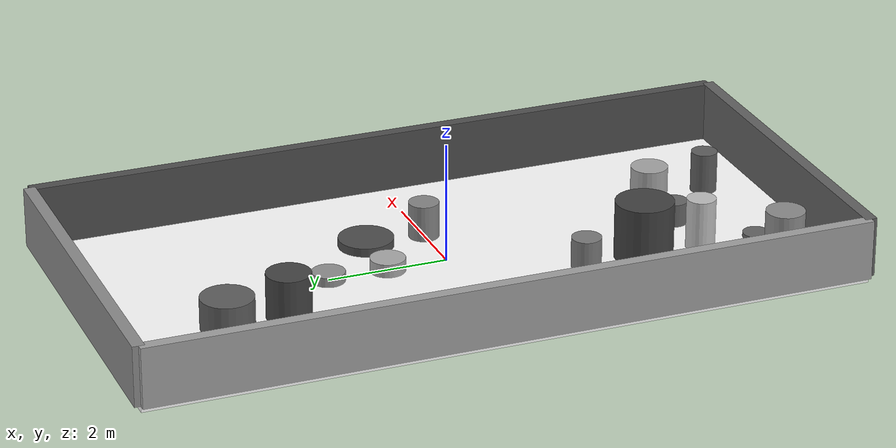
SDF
<sdf version="1.7">
  <world name="default">
    <plugin filename="gz-sim-physics-system" name="gz::sim::systems::Physics" />
    <plugin filename="gz-sim-user-commands-system" name="gz::sim::systems::UserCommands" />
    <plugin filename="gz-sim-scene-broadcaster-system" name="gz::sim::systems::SceneBroadcaster" />
    <plugin filename="gz-sim-sensors-system" name="gz::sim::systems::Sensors">
      <render_engine>ogre2</render_engine>
    </plugin>
    <plugin filename="gz-sim-imu-system" name="gz::sim::systems::Imu" />
    <plugin filename="gz-sim-contact-system" name="gz::sim::systems::Contact" />
    <light name="sun" type="directional">
      <cast_shadows>true</cast_shadows>
      <direction>-0.5 -0.5 -1</direction>
      <diffuse>1 1 1 1</diffuse>
      <specular>0.1 0.1 0.1 1</specular>
      <intensity>1.0</intensity>
    </light>
    <physics type="ode">
      <max_step_size>0.001</max_step_size>
      <real_time_factor>1.0</real_time_factor>
      <ode>
        <solver>
          <type>quick</type>
          <iters>150</iters>
          <precon_iters>0</precon_iters>
          <sor>1.4</sor>
          <use_dynamic_moi_rescaling>1</use_dynamic_moi_rescaling>
        </solver>
        <constraints>
          <cfm>0.00001</cfm>
          <erp>0.2</erp>
          <contact_max_correcting_vel>2000.0</contact_max_correcting_vel>
          <contact_surface_layer>0.01</contact_surface_layer>
        </constraints>
      </ode>
    </physics>
    <model name="ground_plane">
      <static>true</static>
      <link name="link">
        <pose>0.0 0.0 -0.05 0.0 0.0 0.0</pose>
        <visual name="visual">
          <material>
            <pbr>
              <metal>
                <albedo_map>file:///home/sjohnson/WorldGeneration/floor_texture.png</albedo_map>
                <metalness>0.0</metalness>
                <roughness>1.0</roughness>
              </metal>
            </pbr>
            <ambient>1 1 1 1</ambient>
            <diffuse>1 1 1 1</diffuse>
          </material>
          <geometry>
            <box>
              <size>6.0 12.0 0.1</size>
            </box>
          </geometry>
        </visual>
        <collision name="collision">
          <geometry>
            <box>
              <size>6.0 12.0 0.1</size>
            </box>
          </geometry>
          <surface>
            <friction>
              <ode>
                <mu>100</mu>
                <mu2>50.0</mu2>
                <slip1>0.0</slip1>
                <slip2>0.0</slip2>
              </ode>
            </friction>
            <bounce />
            <contact>
              <ode>
                <kp>10000.0</kp>
                <kd>100.0</kd>
              </ode>
            </contact>
          </surface>
        </collision>
      </link>
    </model>
    <model name="pn_pillar_0">
      <static>true</static>
      <link name="link">
        <pose>-2.0 -5.0 0.4469273363149318 0.0 0.0 0.0</pose>
        <visual name="visual">
          <material>
            <ambient>0.5531721096645393 0.5531721096645393 0.5531721096645393 1</ambient>
            <diffuse>0.5531721096645393 0.5531721096645393 0.5531721096645393 1</diffuse>
          </material>
          <geometry>
            <cylinder>
              <radius>0.3199983187913039</radius>
              <length>0.8938546726298636</length>
            </cylinder>
          </geometry>
        </visual>
        <collision name="collision">
          <geometry>
            <cylinder>
              <radius>0.3199983187913039</radius>
              <length>0.8938546726298636</length>
            </cylinder>
          </geometry>
          <surface>
            <friction>
              <ode>
                <mu>100</mu>
                <mu2>50.0</mu2>
                <slip1>0.0</slip1>
                <slip2>0.0</slip2>
              </ode>
            </friction>
            <bounce />
            <contact>
              <ode>
                <kp>10000.0</kp>
                <kd>100.0</kd>
              </ode>
            </contact>
          </surface>
        </collision>
      </link>
    </model>
    <model name="pn_pillar_1">
      <static>true</static>
      <link name="link">
        <pose>-2.0 1.0 0.1335561215981853 0.0 0.0 0.0</pose>
        <visual name="visual">
          <material>
            <ambient>0.5502382913441637 0.5502382913441637 0.5502382913441637 1</ambient>
            <diffuse>0.5502382913441637 0.5502382913441637 0.5502382913441637 1</diffuse>
          </material>
          <geometry>
            <cylinder>
              <radius>0.3547151852070559</radius>
              <length>0.2671122431963706</length>
            </cylinder>
          </geometry>
        </visual>
        <collision name="collision">
          <geometry>
            <cylinder>
              <radius>0.3547151852070559</radius>
              <length>0.2671122431963706</length>
            </cylinder>
          </geometry>
          <surface>
            <friction>
              <ode>
                <mu>100</mu>
                <mu2>50.0</mu2>
                <slip1>0.0</slip1>
                <slip2>0.0</slip2>
              </ode>
            </friction>
            <bounce />
            <contact>
              <ode>
                <kp>10000.0</kp>
                <kd>100.0</kd>
              </ode>
            </contact>
          </surface>
        </collision>
      </link>
    </model>
    <model name="pn_pillar_2">
      <static>true</static>
      <link name="link">
        <pose>-1.0 -5.0 0.04028616018172717 0.0 0.0 0.0</pose>
        <visual name="visual">
          <material>
            <ambient>0.39205049558950034 0.39205049558950034 0.39205049558950034 1</ambient>
            <diffuse>0.39205049558950034 0.39205049558950034 0.39205049558950034 1</diffuse>
          </material>
          <geometry>
            <cylinder>
              <radius>0.2206831010799622</radius>
              <length>0.08057232036345434</length>
            </cylinder>
          </geometry>
        </visual>
        <collision name="collision">
          <geometry>
            <cylinder>
              <radius>0.2206831010799622</radius>
              <length>0.08057232036345434</length>
            </cylinder>
          </geometry>
          <surface>
            <friction>
              <ode>
                <mu>100</mu>
                <mu2>50.0</mu2>
                <slip1>0.0</slip1>
                <slip2>0.0</slip2>
              </ode>
            </friction>
            <bounce />
            <contact>
              <ode>
                <kp>10000.0</kp>
                <kd>100.0</kd>
              </ode>
            </contact>
          </surface>
        </collision>
      </link>
    </model>
    <model name="pn_pillar_3">
      <static>true</static>
      <link name="link">
        <pose>-1.0 -4.0 0.42549605417745373 0.0 0.0 0.0</pose>
        <visual name="visual">
          <material>
            <ambient>0.7517240120261395 0.7517240120261395 0.7517240120261395 1</ambient>
            <diffuse>0.7517240120261395 0.7517240120261395 0.7517240120261395 1</diffuse>
          </material>
          <geometry>
            <cylinder>
              <radius>0.2406173539504394</radius>
              <length>0.8509921083549075</length>
            </cylinder>
          </geometry>
        </visual>
        <collision name="collision">
          <geometry>
            <cylinder>
              <radius>0.2406173539504394</radius>
              <length>0.8509921083549075</length>
            </cylinder>
          </geometry>
          <surface>
            <friction>
              <ode>
                <mu>100</mu>
                <mu2>50.0</mu2>
                <slip1>0.0</slip1>
                <slip2>0.0</slip2>
              </ode>
            </friction>
            <bounce />
            <contact>
              <ode>
                <kp>10000.0</kp>
                <kd>100.0</kd>
              </ode>
            </contact>
          </surface>
        </collision>
      </link>
    </model>
    <model name="pn_pillar_4">
      <static>true</static>
      <link name="link">
        <pose>-1.0 -3.0 0.48475088189394216 0.0 0.0 0.0</pose>
        <visual name="visual">
          <material>
            <ambient>0.25575286774918693 0.25575286774918693 0.25575286774918693 1</ambient>
            <diffuse>0.25575286774918693 0.25575286774918693 0.25575286774918693 1</diffuse>
          </material>
          <geometry>
            <cylinder>
              <radius>0.4803557979223696</radius>
              <length>0.9695017637878843</length>
            </cylinder>
          </geometry>
        </visual>
        <collision name="collision">
          <geometry>
            <cylinder>
              <radius>0.4803557979223696</radius>
              <length>0.9695017637878843</length>
            </cylinder>
          </geometry>
          <surface>
            <friction>
              <ode>
                <mu>100</mu>
                <mu2>50.0</mu2>
                <slip1>0.0</slip1>
                <slip2>0.0</slip2>
              </ode>
            </friction>
            <bounce />
            <contact>
              <ode>
                <kp>10000.0</kp>
                <kd>100.0</kd>
              </ode>
            </contact>
          </surface>
        </collision>
      </link>
    </model>
    <model name="pn_pillar_5">
      <static>true</static>
      <link name="link">
        <pose>-1.0 -2.0 0.25240358185902073 0.0 0.0 0.0</pose>
        <visual name="visual">
          <material>
            <ambient>0.4793651081500856 0.4793651081500856 0.4793651081500856 1</ambient>
            <diffuse>0.4793651081500856 0.4793651081500856 0.4793651081500856 1</diffuse>
          </material>
          <geometry>
            <cylinder>
              <radius>0.2468333418757992</radius>
              <length>0.5048071637180415</length>
            </cylinder>
          </geometry>
        </visual>
        <collision name="collision">
          <geometry>
            <cylinder>
              <radius>0.2468333418757992</radius>
              <length>0.5048071637180415</length>
            </cylinder>
          </geometry>
          <surface>
            <friction>
              <ode>
                <mu>100</mu>
                <mu2>50.0</mu2>
                <slip1>0.0</slip1>
                <slip2>0.0</slip2>
              </ode>
            </friction>
            <bounce />
            <contact>
              <ode>
                <kp>10000.0</kp>
                <kd>100.0</kd>
              </ode>
            </contact>
          </surface>
        </collision>
      </link>
    </model>
    <model name="pn_pillar_6">
      <static>true</static>
      <link name="link">
        <pose>-1.0 3.0 0.38071539722993586 0.0 0.0 0.0</pose>
        <visual name="visual">
          <material>
            <ambient>0.2656291101842988 0.2656291101842988 0.2656291101842988 1</ambient>
            <diffuse>0.2656291101842988 0.2656291101842988 0.2656291101842988 1</diffuse>
          </material>
          <geometry>
            <cylinder>
              <radius>0.36332676474600667</radius>
              <length>0.7614307944598717</length>
            </cylinder>
          </geometry>
        </visual>
        <collision name="collision">
          <geometry>
            <cylinder>
              <radius>0.36332676474600667</radius>
              <length>0.7614307944598717</length>
            </cylinder>
          </geometry>
          <surface>
            <friction>
              <ode>
                <mu>100</mu>
                <mu2>50.0</mu2>
                <slip1>0.0</slip1>
                <slip2>0.0</slip2>
              </ode>
            </friction>
            <bounce />
            <contact>
              <ode>
                <kp>10000.0</kp>
                <kd>100.0</kd>
              </ode>
            </contact>
          </surface>
        </collision>
      </link>
    </model>
    <model name="pn_pillar_7">
      <static>true</static>
      <link name="link">
        <pose>-1.0 4.0 0.26562181868313917 0.0 0.0 0.0</pose>
        <visual name="visual">
          <material>
            <ambient>0.36504180648916296 0.36504180648916296 0.36504180648916296 1</ambient>
            <diffuse>0.36504180648916296 0.36504180648916296 0.36504180648916296 1</diffuse>
          </material>
          <geometry>
            <cylinder>
              <radius>0.43354863759059525</radius>
              <length>0.5312436373662783</length>
            </cylinder>
          </geometry>
        </visual>
        <collision name="collision">
          <geometry>
            <cylinder>
              <radius>0.43354863759059525</radius>
              <length>0.5312436373662783</length>
            </cylinder>
          </geometry>
          <surface>
            <friction>
              <ode>
                <mu>100</mu>
                <mu2>50.0</mu2>
                <slip1>0.0</slip1>
                <slip2>0.0</slip2>
              </ode>
            </friction>
            <bounce />
            <contact>
              <ode>
                <kp>10000.0</kp>
                <kd>100.0</kd>
              </ode>
            </contact>
          </surface>
        </collision>
      </link>
    </model>
    <model name="pn_pillar_8">
      <static>true</static>
      <link name="link">
        <pose>0.0 -4.0 0.19350075696717575 0.0 0.0 0.0</pose>
        <visual name="visual">
          <material>
            <ambient>0.4013506522494112 0.4013506522494112 0.4013506522494112 1</ambient>
            <diffuse>0.4013506522494112 0.4013506522494112 0.4013506522494112 1</diffuse>
          </material>
          <geometry>
            <cylinder>
              <radius>0.22070945115939472</radius>
              <length>0.3870015139343515</length>
            </cylinder>
          </geometry>
        </visual>
        <collision name="collision">
          <geometry>
            <cylinder>
              <radius>0.22070945115939472</radius>
              <length>0.3870015139343515</length>
            </cylinder>
          </geometry>
          <surface>
            <friction>
              <ode>
                <mu>100</mu>
                <mu2>50.0</mu2>
                <slip1>0.0</slip1>
                <slip2>0.0</slip2>
              </ode>
            </friction>
            <bounce />
            <contact>
              <ode>
                <kp>10000.0</kp>
                <kd>100.0</kd>
              </ode>
            </contact>
          </surface>
        </collision>
      </link>
    </model>
    <model name="pn_pillar_9">
      <static>true</static>
      <link name="link">
        <pose>0.0 1.0 0.11227867664645658 0.0 0.0 0.0</pose>
        <visual name="visual">
          <material>
            <ambient>0.663914047671273 0.663914047671273 0.663914047671273 1</ambient>
            <diffuse>0.663914047671273 0.663914047671273 0.663914047671273 1</diffuse>
          </material>
          <geometry>
            <cylinder>
              <radius>0.2905201875194141</radius>
              <length>0.22455735329291315</length>
            </cylinder>
          </geometry>
        </visual>
        <collision name="collision">
          <geometry>
            <cylinder>
              <radius>0.2905201875194141</radius>
              <length>0.22455735329291315</length>
            </cylinder>
          </geometry>
          <surface>
            <friction>
              <ode>
                <mu>100</mu>
                <mu2>50.0</mu2>
                <slip1>0.0</slip1>
                <slip2>0.0</slip2>
              </ode>
            </friction>
            <bounce />
            <contact>
              <ode>
                <kp>10000.0</kp>
                <kd>100.0</kd>
              </ode>
            </contact>
          </surface>
        </collision>
      </link>
    </model>
    <model name="pn_pillar_10">
      <static>true</static>
      <link name="link">
        <pose>0.0 2.0 0.07955180184588803 0.0 0.0 0.0</pose>
        <visual name="visual">
          <material>
            <ambient>0.5661689417808379 0.5661689417808379 0.5661689417808379 1</ambient>
            <diffuse>0.5661689417808379 0.5661689417808379 0.5661689417808379 1</diffuse>
          </material>
          <geometry>
            <cylinder>
              <radius>0.2744476236270714</radius>
              <length>0.15910360369177606</length>
            </cylinder>
          </geometry>
        </visual>
        <collision name="collision">
          <geometry>
            <cylinder>
              <radius>0.2744476236270714</radius>
              <length>0.15910360369177606</length>
            </cylinder>
          </geometry>
          <surface>
            <friction>
              <ode>
                <mu>100</mu>
                <mu2>50.0</mu2>
                <slip1>0.0</slip1>
                <slip2>0.0</slip2>
              </ode>
            </friction>
            <bounce />
            <contact>
              <ode>
                <kp>10000.0</kp>
                <kd>100.0</kd>
              </ode>
            </contact>
          </surface>
        </collision>
      </link>
    </model>
    <model name="pn_pillar_11">
      <static>true</static>
      <link name="link">
        <pose>1.0 -5.0 0.3464482938812816 0.0 0.0 0.0</pose>
        <visual name="visual">
          <material>
            <ambient>0.3703607148456388 0.3703607148456388 0.3703607148456388 1</ambient>
            <diffuse>0.3703607148456388 0.3703607148456388 0.3703607148456388 1</diffuse>
          </material>
          <geometry>
            <cylinder>
              <radius>0.21937679817428235</radius>
              <length>0.6928965877625632</length>
            </cylinder>
          </geometry>
        </visual>
        <collision name="collision">
          <geometry>
            <cylinder>
              <radius>0.21937679817428235</radius>
              <length>0.6928965877625632</length>
            </cylinder>
          </geometry>
          <surface>
            <friction>
              <ode>
                <mu>100</mu>
                <mu2>50.0</mu2>
                <slip1>0.0</slip1>
                <slip2>0.0</slip2>
              </ode>
            </friction>
            <bounce />
            <contact>
              <ode>
                <kp>10000.0</kp>
                <kd>100.0</kd>
              </ode>
            </contact>
          </surface>
        </collision>
      </link>
    </model>
    <model name="pn_pillar_12">
      <static>true</static>
      <link name="link">
        <pose>1.0 -4.0 0.29104809006238913 0.0 0.0 0.0</pose>
        <visual name="visual">
          <material>
            <ambient>0.6507342844995496 0.6507342844995496 0.6507342844995496 1</ambient>
            <diffuse>0.6507342844995496 0.6507342844995496 0.6507342844995496 1</diffuse>
          </material>
          <geometry>
            <cylinder>
              <radius>0.30975533693239765</radius>
              <length>0.5820961801247783</length>
            </cylinder>
          </geometry>
        </visual>
        <collision name="collision">
          <geometry>
            <cylinder>
              <radius>0.30975533693239765</radius>
              <length>0.5820961801247783</length>
            </cylinder>
          </geometry>
          <surface>
            <friction>
              <ode>
                <mu>100</mu>
                <mu2>50.0</mu2>
                <slip1>0.0</slip1>
                <slip2>0.0</slip2>
              </ode>
            </friction>
            <bounce />
            <contact>
              <ode>
                <kp>10000.0</kp>
                <kd>100.0</kd>
              </ode>
            </contact>
          </surface>
        </collision>
      </link>
    </model>
    <model name="pn_pillar_13">
      <static>true</static>
      <link name="link">
        <pose>1.0 0.0 0.3015860229382031 0.0 0.0 0.0</pose>
        <visual name="visual">
          <material>
            <ambient>0.5255654894835141 0.5255654894835141 0.5255654894835141 1</ambient>
            <diffuse>0.5255654894835141 0.5255654894835141 0.5255654894835141 1</diffuse>
          </material>
          <geometry>
            <cylinder>
              <radius>0.25146855053313544</radius>
              <length>0.6031720458764062</length>
            </cylinder>
          </geometry>
        </visual>
        <collision name="collision">
          <geometry>
            <cylinder>
              <radius>0.25146855053313544</radius>
              <length>0.6031720458764062</length>
            </cylinder>
          </geometry>
          <surface>
            <friction>
              <ode>
                <mu>100</mu>
                <mu2>50.0</mu2>
                <slip1>0.0</slip1>
                <slip2>0.0</slip2>
              </ode>
            </friction>
            <bounce />
            <contact>
              <ode>
                <kp>10000.0</kp>
                <kd>100.0</kd>
              </ode>
            </contact>
          </surface>
        </collision>
      </link>
    </model>
    <model name="pn_pillar_14">
      <static>true</static>
      <link name="link">
        <pose>1.0 1.0 0.07282649261640947 0.0 0.0 0.0</pose>
        <visual name="visual">
          <material>
            <ambient>0.3045365686947347 0.3045365686947347 0.3045365686947347 1</ambient>
            <diffuse>0.3045365686947347 0.3045365686947347 0.3045365686947347 1</diffuse>
          </material>
          <geometry>
            <cylinder>
              <radius>0.4574774369683967</radius>
              <length>0.14565298523281894</length>
            </cylinder>
          </geometry>
        </visual>
        <collision name="collision">
          <geometry>
            <cylinder>
              <radius>0.4574774369683967</radius>
              <length>0.14565298523281894</length>
            </cylinder>
          </geometry>
          <surface>
            <friction>
              <ode>
                <mu>100</mu>
                <mu2>50.0</mu2>
                <slip1>0.0</slip1>
                <slip2>0.0</slip2>
              </ode>
            </friction>
            <bounce />
            <contact>
              <ode>
                <kp>10000.0</kp>
                <kd>100.0</kd>
              </ode>
            </contact>
          </surface>
        </collision>
      </link>
    </model>
    <model name="pn_wall_15">
      <static>true</static>
      <link name="link">
        <pose>-3.0 0.0 0.5 0.0 0.0 0.0</pose>
        <visual name="visual">
          <material>
            <ambient>0.6295199746819959 0.6295199746819959 0.6295199746819959 1</ambient>
            <diffuse>0.6295199746819959 0.6295199746819959 0.6295199746819959 1</diffuse>
          </material>
          <geometry>
            <box>
              <size>0.2 12.0 1.0</size>
            </box>
          </geometry>
        </visual>
        <collision name="collision">
          <geometry>
            <box>
              <size>0.2 12.0 1.0</size>
            </box>
          </geometry>
          <surface>
            <friction>
              <ode>
                <mu>100</mu>
                <mu2>50.0</mu2>
                <slip1>0.0</slip1>
                <slip2>0.0</slip2>
              </ode>
            </friction>
            <bounce />
            <contact>
              <ode>
                <kp>10000.0</kp>
                <kd>100.0</kd>
              </ode>
            </contact>
          </surface>
        </collision>
      </link>
    </model>
    <model name="pn_wall_16">
      <static>true</static>
      <link name="link">
        <pose>3.0 0.0 0.5 0.0 0.0 0.0</pose>
        <visual name="visual">
          <material>
            <ambient>0.3112974444057181 0.3112974444057181 0.3112974444057181 1</ambient>
            <diffuse>0.3112974444057181 0.3112974444057181 0.3112974444057181 1</diffuse>
          </material>
          <geometry>
            <box>
              <size>0.2 12.0 1.0</size>
            </box>
          </geometry>
        </visual>
        <collision name="collision">
          <geometry>
            <box>
              <size>0.2 12.0 1.0</size>
            </box>
          </geometry>
          <surface>
            <friction>
              <ode>
                <mu>100</mu>
                <mu2>50.0</mu2>
                <slip1>0.0</slip1>
                <slip2>0.0</slip2>
              </ode>
            </friction>
            <bounce />
            <contact>
              <ode>
                <kp>10000.0</kp>
                <kd>100.0</kd>
              </ode>
            </contact>
          </surface>
        </collision>
      </link>
    </model>
    <model name="pn_wall_17">
      <static>true</static>
      <link name="link">
        <pose>0.0 -6.0 0.5 0.0 0.0 0.0</pose>
        <visual name="visual">
          <material>
            <ambient>0.3805056724138497 0.3805056724138497 0.3805056724138497 1</ambient>
            <diffuse>0.3805056724138497 0.3805056724138497 0.3805056724138497 1</diffuse>
          </material>
          <geometry>
            <box>
              <size>6.0 0.2 1.0</size>
            </box>
          </geometry>
        </visual>
        <collision name="collision">
          <geometry>
            <box>
              <size>6.0 0.2 1.0</size>
            </box>
          </geometry>
          <surface>
            <friction>
              <ode>
                <mu>100</mu>
                <mu2>50.0</mu2>
                <slip1>0.0</slip1>
                <slip2>0.0</slip2>
              </ode>
            </friction>
            <bounce />
            <contact>
              <ode>
                <kp>10000.0</kp>
                <kd>100.0</kd>
              </ode>
            </contact>
          </surface>
        </collision>
      </link>
    </model>
    <model name="pn_wall_18">
      <static>true</static>
      <link name="link">
        <pose>0.0 6.0 0.5 0.0 0.0 0.0</pose>
        <visual name="visual">
          <material>
            <ambient>0.5447857185948857 0.5447857185948857 0.5447857185948857 1</ambient>
            <diffuse>0.5447857185948857 0.5447857185948857 0.5447857185948857 1</diffuse>
          </material>
          <geometry>
            <box>
              <size>6.0 0.2 1.0</size>
            </box>
          </geometry>
        </visual>
        <collision name="collision">
          <geometry>
            <box>
              <size>6.0 0.2 1.0</size>
            </box>
          </geometry>
          <surface>
            <friction>
              <ode>
                <mu>100</mu>
                <mu2>50.0</mu2>
                <slip1>0.0</slip1>
                <slip2>0.0</slip2>
              </ode>
            </friction>
            <bounce />
            <contact>
              <ode>
                <kp>10000.0</kp>
                <kd>100.0</kd>
              </ode>
            </contact>
          </surface>
        </collision>
      </link>
    </model>
  </world>
</sdf>
